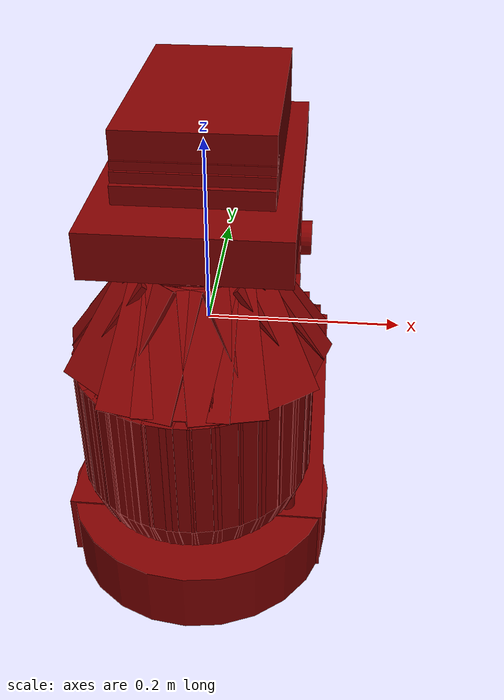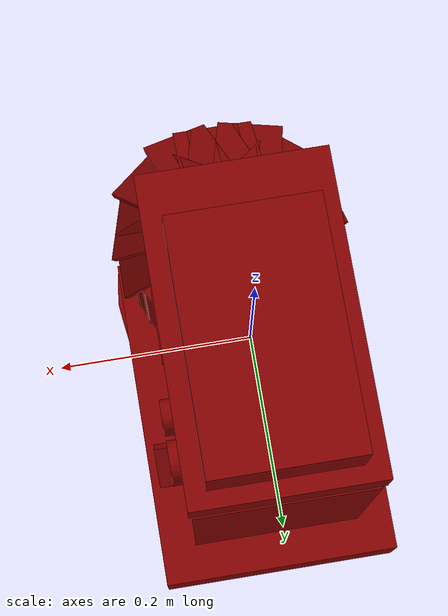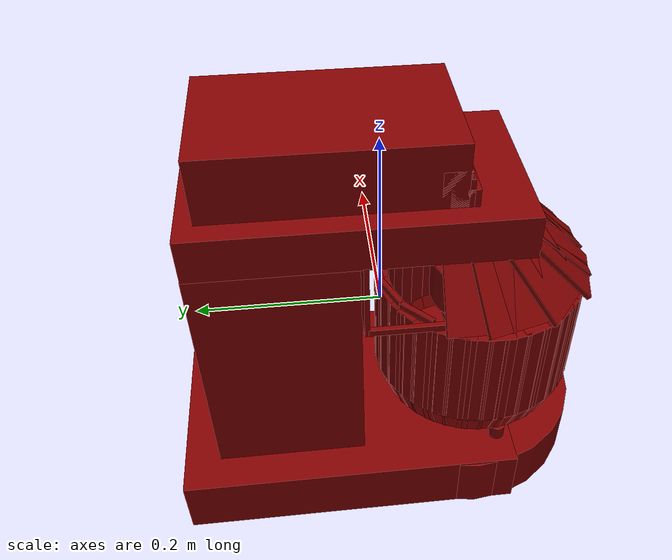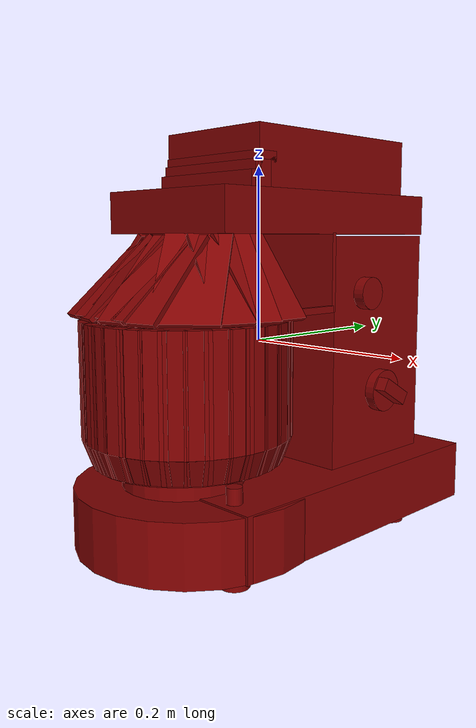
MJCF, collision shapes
<?xml version='1.0' encoding='UTF-8'?>
<mujoco model="model">
  <compiler angle="radian"/>
  <asset>
    <mesh file="visuals/Blender001.obj" name="Blender001_vis"/>
    <mesh file="visuals/Body001.obj" name="Body001_vis"/>
    <mesh file="visuals/Button001.obj" name="Button001_vis"/>
    <mesh file="visuals/Container001.obj" name="Container001_vis"/>
    <mesh file="visuals/Knob001.obj" name="Knob001_vis"/>
    <mesh file="visuals/Lid001.obj" name="Lid001_vis"/>
    <texture file="visuals/T_BC001.png" name="Body001_material" type="2d"/>
    <material name="Body001_material" rgba="1 1 1 1.0" texture="Body001_material" shininess="0.4472135901451111" specular="0.7"/>
    <texture file="visuals/T_BC001.png" name="Button001_material" type="2d"/>
    <material name="Button001_material" rgba="1 1 1 1.0" texture="Button001_material" shininess="0.4472135901451111" specular="0.7"/>
    <texture file="visuals/T_BC001.png" name="Container001_material" type="2d"/>
    <material name="Container001_material" rgba="1 1 1 1.0" texture="Container001_material" shininess="0.4472135901451111" specular="0.7"/>
    <texture file="visuals/T_BC001.png" name="Knob001_material" type="2d"/>
    <material name="Knob001_material" rgba="1 1 1 1.0" texture="Knob001_material" shininess="0.4472135901451111" specular="0.7"/>
    <texture file="visuals/T_BC001.png" name="Lid001_material" type="2d"/>
    <material name="Lid001_material" rgba="1 1 1 1.0" texture="Lid001_material" shininess="0.4472135901451111" specular="0.7"/>
    <texture file="visuals/T_BC001.png" name="Blender001_material" type="2d"/>
    <material name="Blender001_material" rgba="1 1 1 1.0" texture="Blender001_material" shininess="0.4472135901451111" specular="0.7"/>
  </asset>
  <default>
    <default class="visual">
      <geom conaffinity="0" contype="0" group="1" type="mesh"/>
    </default>
    <default class="collision">
      <geom group="0" rgba="0.5 0 0 0.5"/>
    </default>
    <default class="spawn">
      <geom group="0" rgba="1 1 1 0.5" contype="0" conaffinity="0"/>
      <site group="0" rgba="1 1 1 0.5"/>
    </default>
    <default class="region">
      <geom group="1" conaffinity="0" contype="0" rgba="0 1 0 0"/>
    </default>
  </default>
  <worldbody>
    <body>
      <body name="object">
        <geom mesh="Body001_vis" type="mesh" solimp="0.998 0.998 0.001" solref="0.001 1" density="100" friction="0.95 0.3 0.1" class="visual" material="Body001_material"/>
        <geom class="collision" type="box" pos="-0.0007884482038207352 0.10966469347476959 -0.011680183932185173" size="0.09152669459581375 0.0818587988615036 0.13259609043598175" quat="1.0 0.0 0.0 0.0"/>
        <geom class="collision" type="cylinder" pos="-0.09157982468605042 -0.12557129561901093 -0.21869555115699768" size="0.01601528935134411 0.011921694502234459" quat="1.0 0.0 0.0 0.0"/>
        <geom class="collision" type="cylinder" pos="-0.09157982468605042 0.13837343454360962 -0.21869555115699768" size="0.01601528935134411 0.011921694502234459" quat="1.0 0.0 0.0 0.0"/>
        <geom class="collision" type="cylinder" pos="0.0929291695356369 0.13837343454360962 -0.21869555115699768" size="0.01601528935134411 0.011921694502234459" quat="1.0 0.0 0.0 0.0"/>
        <geom class="collision" type="cylinder" pos="0.0929291695356369 -0.12557129561901093 -0.21869555115699768" size="0.01601528935134411 0.011921694502234459" quat="1.0 0.0 0.0 0.0"/>
        <geom class="collision" type="cylinder" pos="-0.09143412858247757 -0.12539009749889374 -0.1359458714723587" size="0.008488369174301624 0.009389183484017849" quat="1.0 0.0 0.0 0.0"/>
        <geom class="collision" type="cylinder" pos="0.09264079481363297 -0.12539009749889374 -0.1359458714723587" size="0.008488369174301624 0.009389183484017849" quat="1.0 0.0 0.0 0.0"/>
        <geom class="collision" type="cylinder" pos="-0.00843361858278513 -0.12539009749889374 -0.1359458714723587" size="0.008488369174301624 0.009389183484017849" quat="1.0 0.0 0.0 0.0"/>
        <geom class="collision" type="cylinder" pos="-0.001985041191801429 -0.11356186866760254 -0.14867164194583893" size="0.06737740337848663 0.02544773928821087" quat="1.0 0.0 0.0 0.0"/>
        <geom class="collision" type="box" pos="-0.0006400577840395272 0.04438207298517227 -0.178863063454628" size="0.1297663003206253 0.18647688627243042 0.03476670756936073" quat="1.0 0.0 0.0 0.0"/>
        <geom class="collision" type="cylinder" pos="0.0007358510629273951 -0.09750024229288101 -0.17969581484794617" size="0.13394969701766968 0.033853307366371155" quat="1.0 0.0 0.0 0.0"/>
        <body name="Button001">
          <joint axis="-1.0 0.0 0.0" pos="0.09236656129360199 0.07978411018848419 0.05673877149820328" limited="true" name="Button001_joint" range="0.0 0.002" type="slide" damping="1" frictionloss="1" armature=".01" stiffness="0.05"/>
          <geom mesh="Button001_vis" type="mesh" solimp="0.998 0.998 0.001" solref="0.001 1" density="100" friction="0.95 0.3 0.1" class="visual" material="Button001_material"/>
          <geom class="collision" type="cylinder" pos="0.09791237115859985 0.07948864251375198 0.05587083473801613" size="0.018539974465966225 0.006515131331980228" quat="0.7071068286895752 -0.0 0.7071067690849304 0.0"/>
        </body>
        <body name="Container001">
          <joint axis="0.0 0.0 1.0" pos="0.0 -0.10831348598003387 -0.04335395246744156" limited="true" name="Container001_joint" range="0.0 0.08" type="slide" damping="1" frictionloss="1" armature=".01" stiffness="0.05"/>
          <geom mesh="Container001_vis" type="mesh" solimp="0.998 0.998 0.001" solref="0.001 1" density="100" friction="0.95 0.3 0.1" class="visual" material="Container001_material"/>
          <geom class="collision" type="box" pos="0.10189328342676163 -0.11322380602359772 -0.10233451426029205" size="0.013965840451419353 0.0066327000968158245 0.015045318752527237" quat="0.7120574712753296 0.12730690836906433 0.12152275443077087 0.6797053217887878"/>
          <geom class="collision" type="box" pos="0.09313759207725525 -0.1500387042760849 -0.10233451426029205" size="0.013965838588774204 0.00663269916549325 0.015045315958559513" quat="0.8260143995285034 0.14768095314502716 0.09573482722043991 0.5354674458503723"/>
          <geom class="collision" type="box" pos="0.09738185256719589 -0.1519366353750229 -0.028676670044660568" size="0.01396583765745163 0.006632702890783548 0.06229601800441742" quat="0.8391123414039612 0.0 0.0 0.5439581871032715"/>
          <geom class="collision" type="cylinder" pos="0.00023518240777775645 -0.11029031872749329 -0.11285266280174255" size="0.09875737875699997 0.00806751474738121" quat="1.0 0.0 0.0 0.0"/>
          <geom class="collision" type="box" pos="0.021402928978204727 -0.20803727209568024 -0.10233448445796967" size="0.013965836726129055 0.00663269916549325 0.015045316889882088" quat="0.9789935350418091 0.1750316321849823 0.018404554575681686 0.10294099152088165"/>
          <geom class="collision" type="box" pos="0.06026076897978783 -0.1963675171136856 -0.028676670044660568" size="0.01396583765745163 0.006632702890783548 0.06229601800441742" quat="0.9554409384727478 0.0 0.0 0.29518234729766846"/>
          <geom class="collision" type="box" pos="0.05763828754425049 -0.19252844154834747 -0.10233451426029205" size="0.013965838588774204 0.006632699631154537 0.015045318752527237" quat="0.9405272603034973 0.16815443336963654 0.05195111781358719 0.2905747592449188"/>
          <geom class="collision" type="box" pos="0.08464417606592178 -0.1653444468975067 -0.10233451426029205" size="0.013965838588774204 0.0066327000968158245 0.015045316889882088" quat="0.8690050840377808 0.15536712110042572 0.08267930895090103 0.4624449908733368"/>
          <geom class="collision" type="box" pos="0.08850041776895523 -0.1679416447877884 -0.028676670044660568" size="0.01396583765745163 0.006632702890783548 0.06229601800441742" quat="0.8827846646308899 0.0 0.0 0.469777911901474"/>
          <geom class="collision" type="box" pos="0.10429301112890244 -0.13077999651432037 -0.028676677495241165" size="0.013965839520096779 0.006632703822106123 0.06229601800441742" quat="0.7776281237602234 0.0 0.0 0.6287245154380798"/>
          <geom class="collision" type="box" pos="0.09974677860736847 -0.12980639934539795 -0.10233451426029205" size="0.01396583765745163 0.006632699631154537 0.015045315958559513" quat="0.765489935874939 0.1368599534034729 0.11065340042114258 0.6189106106758118"/>
          <geom class="collision" type="box" pos="0.10065349191427231 -0.09197548031806946 -0.10233451426029205" size="0.013965839520096779 0.006632699631154537 0.015045316889882088" quat="0.6370744109153748 0.11390084028244019 0.1341693252325058 0.750440776348114"/>
          <geom class="collision" type="box" pos="0.10524114221334457 -0.09122078120708466 -0.028676670044660568" size="0.013965841382741928 0.00663270428776741 0.06229601800441742" quat="0.6471763253211975 0.0 0.0 0.7623403668403625"/>
          <geom class="collision" type="box" pos="0.07420507073402405 -0.18500061333179474 -0.028676670044660568" size="0.013965839520096779 0.006632703822106123 0.06229601800441742" quat="0.9270707368850708 0.0 0.0 0.3748863935470581"/>
          <geom class="collision" type="box" pos="0.0904875099658966 -0.0521109402179718 -0.028676670044660568" size="0.013965836726129055 0.006632702425122261 0.06229601800441742" quat="0.4848506450653076 0.0 0.0 0.8745969533920288"/>
          <geom class="collision" type="box" pos="0.08654442429542542 -0.05457431823015213 -0.10233451426029205" size="0.01396583765745163 0.006632699631154537 0.015045316889882088" quat="0.4772825241088867 0.08533207327127457 0.15392613410949707 0.8609451651573181"/>
          <geom class="collision" type="box" pos="0.022369982674717903 -0.21258492767810822 -0.028676670044660568" size="0.013965839520096779 0.006632703822106123 0.06229601800441742" quat="0.9945171475410461 0.0 0.0 0.10457359999418259"/>
          <geom class="collision" type="box" pos="0.061737511307001114 -0.02741362899541855 -0.10233451426029205" size="0.013965836726129055 0.0066327000968158245 0.015045316889882088" quat="0.3138279318809509 0.056108467280864716 0.1668132245540619 0.9330258369445801"/>
          <geom class="collision" type="box" pos="0.06454727053642273 -0.023709386587142944 -0.028676677495241165" size="0.013965836726129055 0.006632702425122261 0.06229601800441742" quat="0.31880423426628113 0.0 0.0 0.9478206038475037"/>
          <geom class="collision" type="box" pos="0.026318933814764023 -0.005323871970176697 -0.028676670044660568" size="0.01396583765745163 0.006632702890783548 0.06229601800441742" quat="0.12349949777126312 0.0 0.0 0.9923446178436279"/>
          <geom class="collision" type="box" pos="0.025179345160722733 -0.009831339120864868 -0.10233451426029205" size="0.01396583765745163 0.006632698699831963 0.015045315958559513" quat="0.12157176434993744 0.02173551917076111 0.17464932799339294 0.9768549203872681"/>
          <geom class="collision" type="box" pos="-0.012225277721881866 -0.007492713630199432 -0.10233451426029205" size="0.013965840451419353 0.006632700562477112 0.015045315958559513" quat="0.06037798523902893 0.010794822126626968 -0.17566528916358948 -0.9825373888015747"/>
          <geom class="collision" type="box" pos="-0.012794534675776958 -0.0028783977031707764 -0.028676670044660568" size="0.013965840451419353 0.006632703822106123 0.06229601800441742" quat="0.061335381120443344 0.0 0.0 -0.998117208480835"/>
          <geom class="collision" type="box" pos="-0.05263176187872887 -0.0161384716629982 -0.028676677495241165" size="0.013965838588774204 0.006632703356444836 0.06229601800441742" quat="0.25702959299087524 0.0 0.0 -0.9664035439491272"/>
          <geom class="collision" type="box" pos="0.07097336649894714 -0.18165814876556396 -0.10233451426029205" size="0.013965836726129055 0.0066327000968158245 0.015045316889882088" quat="0.9125999212265015 0.16316133737564087 0.0659787505865097 0.36903467774391174"/>
          <geom class="collision" type="box" pos="-0.0503220334649086 -0.020173467695713043 -0.10233451426029205" size="0.013965840451419353 0.0066327000968158245 0.015045316889882088" quat="0.2530176639556885 0.04523634538054466 -0.17008377611637115 -0.9513186812400818"/>
          <geom class="collision" type="box" pos="-0.07794873416423798 -0.04334898293018341 -0.10233451426029205" size="0.013965839520096779 0.0066327000968158245 0.015045316889882088" quat="0.417558878660202 0.07465425878763199 -0.15937866270542145 -0.8914425373077393"/>
          <geom class="collision" type="box" pos="-0.08152057975530624 -0.04037274420261383 -0.028676670044660568" size="0.013965839520096779 0.006632703822106123 0.06229601800441742" quat="0.4241800010204315 0.0 0.0 -0.9055778980255127"/>
          <geom class="collision" type="box" pos="-0.10010028630495071 -0.07303456962108612 -0.028676670044660568" size="0.013965836726129055 0.006632702425122261 0.06229601800441742" quat="0.5773990154266357 0.0 0.0 -0.8164620995521545"/>
          <geom class="collision" type="box" pos="-0.095716692507267 -0.07458384335041046 -0.10233451426029205" size="0.013965836726129055 0.0066327000968158245 0.015045316889882088" quat="0.5683863162994385 0.10162027180194855 -0.14369459450244904 -0.8037177324295044"/>
          <geom class="collision" type="box" pos="-0.10152013599872589 -0.11010442674160004 -0.10233451426029205" size="0.013965838588774204 0.006632700562477112 0.015045316889882088" quat="0.7015516757965088 0.12542855739593506 -0.12346050143241882 -0.6905435919761658"/>
          <geom class="collision" type="box" pos="-0.10616885870695114 -0.11017793416976929 -0.028676670044660568" size="0.00685272878035903 0.014068981632590294 0.06229601800441742" quat="1.0 0.0 0.0 0.0"/>
          <geom class="collision" type="box" pos="-0.09911313652992249 -0.1466338187456131 -0.028676670044660568" size="0.013965839520096779 0.006632703822106123 0.06229601800441742" quat="0.82413250207901 0.0 0.0 -0.5663970112800598"/>
          <geom class="collision" type="box" pos="-0.09477266669273376 -0.14496755599975586 -0.10233451426029205" size="0.013965836726129055 0.006632699631154537 0.015045318752527237" quat="0.8112683892250061 0.14504455029964447 -0.09968403726816177 -0.5575560927391052"/>
          <geom class="collision" type="box" pos="-0.074417345225811 -0.17765958607196808 -0.10233451426029205" size="0.013965839520096779 0.0066327000968158245 0.015045316889882088" quat="0.9021095633506775 0.16128577291965485 -0.0704394057393074 -0.39398422837257385"/>
          <geom class="collision" type="box" pos="0.03890387341380119 -0.202630415558815 -0.10233448445796967" size="0.013965840451419353 0.006632699631154537 0.015045318752527237" quat="0.965756893157959 0.17266513407230377 0.03408178314566612 0.19062745571136475"/>
          <geom class="collision" type="box" pos="-0.07782787829637527 -0.18081939220428467 -0.028676677495241165" size="0.013965838588774204 0.006632703356444836 0.06229601800441742" quat="0.9164140224456787 0.0 0.0 -0.40023157000541687"/>
          <geom class="collision" type="box" pos="-0.048105597496032715 -0.2032991498708725 -0.028676670044660568" size="0.01396583765745163 0.006632702890783548 0.06229601800441742" quat="0.9723350405693054 0.0 0.0 -0.23359063267707825"/>
          <geom class="collision" type="box" pos="-0.045993611216545105 -0.19915719330310822 -0.10233451426029205" size="0.013965839520096779 0.006632700562477112 0.015045318752527237" quat="0.9571576714515686 0.17112773656845093 -0.04111115261912346 -0.2299443483352661"/>
          <geom class="collision" type="box" pos="-0.014120768755674362 -0.20924539864063263 -0.10233451426029205" size="0.013965841382741928 0.006632700562477112 0.015045318752527237" quat="0.9819267988204956 0.17555609345436096 -0.012444666586816311 -0.06960588693618774"/>
          <geom class="collision" type="box" pos="-0.014776633121073246 -0.21384824812412262 -0.028676670044660568" size="0.01396583765745163 0.006632702890783548 0.06229601800441742" quat="0.9974969625473022 0.0 0.0 -0.07070967555046082"/>
          <geom class="collision" type="box" pos="-0.036361776292324066 -0.20842157304286957 -0.028676677495241165" size="0.013965838588774204 0.006632703356444836 0.06229601800441742" quat="0.9846334457397461 0.0 0.0 -0.1746336966753006"/>
          <geom class="collision" type="box" pos="-0.03476287052035332 -0.20405586063861847 -0.10233451426029205" size="0.013965836726129055 0.00663269916549325 0.015045317821204662" quat="0.9692639708518982 0.17329254746437073 -0.030735071748495102 -0.17190803587436676"/>
          <geom class="collision" type="box" pos="-0.06384027004241943 -0.18755872547626495 -0.10233451426029205" size="0.013965839520096779 0.0066327000968158245 0.015045320615172386" quat="0.927863597869873 0.16589036583900452 -0.05878116562962532 -0.3287770748138428"/>
          <geom class="collision" type="box" pos="-0.06676758825778961 -0.1911708265542984 -0.028676677495241165" size="0.01396583765745163 0.006632702890783548 0.06229601800441742" quat="0.9425765872001648 0.0 0.0 -0.3339901566505432"/>
          <geom class="collision" type="box" pos="-0.0911640077829361 -0.1630004495382309 -0.028676670044660568" size="0.013965839520096779 0.006632703822106123 0.06229601800441742" quat="0.8695359230041504 0.0 0.0 -0.49386975169181824"/>
          <geom class="collision" type="box" pos="0.04067046567797661 -0.206931009888649 -0.028676677495241165" size="0.013965839520096779 0.006632703822106123 0.06229601800441742" quat="0.9810706377029419 0.0 0.0 0.19365014135837555"/>
          <geom class="collision" type="box" pos="-0.08717083185911179 -0.16061915457248688 -0.10233451426029205" size="0.013965839520096779 0.006632699631154537 0.015045316889882088" quat="0.8559631109237671 0.15303540229797363 -0.08691941201686859 -0.4861608147621155"/>
          <geom class="collision" type="box" pos="-0.1002810150384903 -0.12440823018550873 -0.10233451426029205" size="0.013965836726129055 0.006632701028138399 0.015045316889882088" quat="0.7485148310661316 0.13382500410079956 -0.11430522799491882 -0.6393361687660217"/>
          <geom class="collision" type="box" pos="-0.10487311333417892 -0.12513522803783417 -0.028676670044660568" size="0.013965836726129055 0.006632702425122261 0.06229601800441742" quat="0.7603838443756104 0.0 0.0 -0.6494739651679993"/>
          <geom class="collision" type="box" pos="-0.10419172793626785 -0.08800908923149109 -0.028676670044660568" size="0.013965836726129055 0.006632702425122261 0.06229601800441742" quat="0.6354108452796936 0.0 0.0 -0.7721742391586304"/>
          <geom class="collision" type="box" pos="-0.09962937980890274 -0.08890409767627716 -0.10233451426029205" size="0.013965840451419353 0.006632699631154537 0.015045315958559513" quat="0.6254926919937134 0.11183018237352371 -0.13590008020401 -0.7601211071014404"/>
          <geom class="collision" type="box" pos="-0.08656459301710129 -0.05536751449108124 -0.10233451426029205" size="0.013965838588774204 0.0066327000968158245 0.015045316889882088" quat="0.4812224805355072 0.08603650331497192 -0.15353348851203918 -0.8587491512298584"/>
          <geom class="collision" type="box" pos="-0.09053006768226624 -0.05294034630060196 -0.028676670044660568" size="0.013965838588774204 0.006632703356444836 0.06229601800441742" quat="0.4888530969619751 0.0 0.0 -0.8723661303520203"/>
          <geom class="collision" type="box" pos="-0.06556304544210434 -0.02485746145248413 -0.028676670044660568" size="0.013965838588774204 0.006632703356444836 0.06229601800441742" quat="0.3271549344062805 0.0 0.0 -0.9449707269668579"/>
          <geom class="collision" type="box" pos="-0.06268836557865143 -0.028511539101600647 -0.10233451426029205" size="0.013965839520096779 0.006632700562477112 0.015045315958559513" quat="0.3220481872558594 0.05757814273238182 -0.16631169617176056 -0.9302204847335815"/>
          <geom class="collision" type="box" pos="-0.03084539622068405 -0.011589251458644867 -0.10233451426029205" size="0.013965841382741928 0.006632699631154537 0.015045318752527237" quat="0.15214776992797852 0.027202147990465164 -0.1738818734884262 -0.9725616574287415"/>
          <geom class="collision" type="box" pos="0.00023517990484833717 -0.21026302874088287 -0.10233448445796967" size="0.013965838588774204 0.006632700562477112 0.015045320615172386" quat="0.9843907356262207 0.17599667608737946 -3.9079274537340937e-17 1.1651339097177741e-23"/>
          <geom class="collision" type="box" pos="-0.0322653166949749 -0.007162079215049744 -0.028676670044660568" size="0.013965841382741928 0.00663270428776741 0.06229601800441742" quat="0.15456034243106842 0.0 0.0 -0.9879833459854126"/>
          <geom class="collision" type="box" pos="0.00945871789008379 -0.002478167414665222 -0.028676670044660568" size="0.013965838588774204 0.006632703356444836 0.06229601800441742" quat="0.04337745159864426 0.0 0.0 0.9990587830543518"/>
          <geom class="collision" type="box" pos="0.009055743925273418 -0.007109969854354858 -0.10233451426029205" size="0.013965838588774204 0.00663269916549325 0.015045317821204662" quat="0.04270035773515701 0.00763430492952466 0.17583119869232178 0.9834641814231873"/>
          <geom class="collision" type="box" pos="0.0451558418571949 -0.01717764139175415 -0.10233451426029205" size="0.013965839520096779 0.00663269916549325 0.015045320615172386" quat="0.22305823862552643 0.03988001123070717 0.17141881585121155 0.9587857723236084"/>
          <geom class="collision" type="box" pos="0.047208067029714584 -0.013005778193473816 -0.028676670044660568" size="0.013965839520096779 0.006632703822106123 0.06229601800441742" quat="0.2265952229499817 0.0 0.0 0.9739890098571777"/>
          <geom class="collision" type="box" pos="0.08077610284090042 -0.0389406681060791 -0.028676670044660568" size="0.013965839520096779 0.006632703822106123 0.06229601800441742" quat="0.4161731004714966 0.0 0.0 0.9092854261398315"/>
          <geom class="collision" type="box" pos="0.07725732028484344 -0.041979461908340454 -0.10233451426029205" size="0.013965839520096779 0.0066327000968158245 0.015045316889882088" quat="0.40967684984207153 0.07324506342411041 0.16003122925758362 0.8950921893119812"/>
          <geom class="collision" type="box" pos="0.09587226063013077 -0.07370595633983612 -0.10233451426029205" size="0.013965836726129055 0.006632699631154537 0.015045318752527237" quat="0.5646975040435791 0.10096082091331482 0.144158735871315 0.8063137531280518"/>
          <geom class="collision" type="box" pos="0.10024146735668182 -0.07211661338806152 -0.028676670044660568" size="0.013965836726129055 0.006632702425122261 0.06229601800441742" quat="0.5736517310142517 0.0 0.0 0.8190993070602417"/>
          <geom class="collision" type="box" pos="0.10653755813837051 -0.11343982815742493 -0.028676670044660568" size="0.01396583765745163 0.006632702890783548 0.06229601800441742" quat="0.7233484387397766 0.0 0.0 0.6904832124710083"/>
          <geom class="collision" type="box" pos="0.00023517990484833717 -0.21491236984729767 -0.028676670044660568" size="0.013965838588774204 0.006632703356444836 0.06229601800441742" quat="1.0 0.0 0.0 0.0"/>
        </body>
        <body name="Knob001">
          <joint axis="-1.0 0.0 0.0" pos="0.10591834783554077 0.10892479121685028 -0.060967087745666504" limited="true" name="Knob001_joint" range="0.0 4.886921905584122" type="hinge" damping="0.05" armature="0.001"/>
          <geom mesh="Knob001_vis" type="mesh" solimp="0.998 0.998 0.001" solref="0.001 1" density="100" friction="0.95 0.3 0.1" class="visual" material="Knob001_material"/>
          <geom class="collision" type="cylinder" pos="0.09889586269855499 0.1084667518734932 -0.06107860431075096" size="0.024719323962926865 0.005838913843035698" quat="0.7071068286895752 -0.0 0.7071067690849304 0.0"/>
          <geom class="collision" type="box" pos="0.11128564924001694 0.10930505394935608 -0.0606585294008255" size="0.007459341082721949 0.007930416613817215 0.022051239386200905" quat="0.8656713962554932 0.5006126761436462 1.1115833065988877e-16 6.5158573652021226e-24"/>
        </body>
        <body name="Lid001">
          <joint axis="-1.0 0.0 0.0" pos="0.003621272509917617 0.18859846889972687 0.12621155381202698" limited="true" name="Lid001_joint" range="0.0 1.5707963267948966" type="hinge" damping="1" frictionloss="1" armature=".01" stiffness="0.05"/>
          <geom mesh="Lid001_vis" type="mesh" solimp="0.998 0.998 0.001" solref="0.001 1" density="100" friction="0.95 0.3 0.1" class="visual" material="Lid001_material"/>
          <geom class="collision" type="box" pos="-0.001328813610598445 0.026462554931640625 0.14599385857582092" size="0.0951722115278244 0.16363123059272766 0.022937003523111343" quat="1.0 0.0 0.0 0.0"/>
          <geom class="collision" type="box" pos="4.78647998534143e-05 -0.06080763041973114 0.18801355361938477" size="0.07387411594390869 0.013172403909265995 0.019035575911402702" quat="1.0 0.0 0.0 0.0"/>
          <geom class="collision" type="box" pos="4.78647998534143e-05 0.050475552678108215 0.2016994208097458" size="0.07387412339448929 0.12249021232128143 0.03272141143679619" quat="1.0 0.0 0.0 0.0"/>
          <geom class="collision" type="box" pos="4.78647998534143e-05 -0.06735362112522125 0.18801355361938477" size="0.07387413084506989 0.006761385593563318 0.019035579636693" quat="1.0 0.0 0.0 0.0"/>
          <geom class="collision" type="box" pos="4.78647998534143e-05 -0.07674458622932434 0.17815126478672028" size="0.07387413829565048 0.00600218353793025 0.009173277765512466" quat="1.0 0.0 0.0 0.0"/>
          <geom class="collision" type="box" pos="4.78647998534143e-05 -0.066293865442276 0.18358752131462097" size="0.07387414574623108 0.010829196311533451 0.014609526842832565" quat="1.0 0.0 0.0 0.0"/>
          <geom class="collision" type="box" pos="0.09245838224887848 -0.01736270636320114 0.04113068804144859" size="0.0027169252280145884 0.03912000358104706 0.003724277950823307" quat="1.0 0.0 0.0 0.0"/>
          <geom class="collision" type="box" pos="-0.001328813610598445 0.023036610335111618 0.08092157542705536" size="0.09517226368188858 0.0026967546436935663 0.04342474415898323" quat="1.0 0.0 0.0 0.0"/>
          <geom class="collision" type="box" pos="-0.09378419071435928 -0.01736270636320114 0.04113068804144859" size="0.0027169256936758757 0.039120011031627655 0.0037242784164845943" quat="1.0 0.0 0.0 0.0"/>
          <geom class="collision" type="box" pos="-0.07319995760917664 -0.029625937342643738 0.04113068804144859" size="0.0027169263921678066 0.020795566961169243 0.0037242791149765253" quat="0.9227108955383301 0.0 0.0 -0.3854927122592926"/>
          <geom class="collision" type="box" pos="-0.04002855718135834 -0.007736615836620331 0.04113068804144859" size="0.002716926857829094 0.02079557068645954 0.0037242791149765253" quat="0.837822437286377 0.0 0.0 -0.5459427833557129"/>
          <geom class="collision" type="box" pos="-0.0006694255862385035 0.0018757320940494537 0.04113068804144859" size="0.002716926857829094 0.020795568823814392 0.0037242791149765253" quat="0.7352935671806335 0.0 0.0 -0.6777487397193909"/>
          <geom class="collision" type="box" pos="0.04049614444375038 -0.003307454288005829 0.04113068804144859" size="0.0027169263921678066 0.020795565098524094 0.0037242791149765253" quat="0.5781680941581726 0.0 0.0 -0.8159176707267761"/>
          <geom class="collision" type="box" pos="0.0754881277680397 -0.023771516978740692 0.04113068804144859" size="0.0027169263921678066 0.020795566961169243 0.0037242791149765253" quat="0.42034149169921875 0.0 0.0 -0.9073659777641296"/>
          <geom class="collision" type="box" pos="-0.002869380870833993 -0.17646372318267822 0.07941456139087677" size="0.03435741737484932 0.002696757670491934 0.05819800868630409" quat="0.9129106998443604 -0.40815937519073486 9.062957397578455e-17 9.815488587912014e-24"/>
          <geom class="collision" type="box" pos="-0.0573975145816803 -0.15529786050319672 0.08139331638813019" size="0.03435741737484932 0.0026967579033225775 0.054849106818437576" quat="0.8775176405906677 -0.345663458108902 0.12181935459375381 -0.3092564642429352"/>
          <geom class="collision" type="box" pos="-0.07870510220527649 -0.08780740201473236 0.08140534162521362" size="0.03435741737484932 0.002696757670491934 0.05192197486758232" quat="0.6705660820007324 -0.22436828911304474 0.22436831891536713 -0.6705660820007324"/>
          <geom class="collision" type="box" pos="-0.07558850944042206 -0.11878924071788788 0.08101095259189606" size="0.03435742110013962 0.002696758136153221 0.052268557250499725" quat="0.5672957897186279 0.2008899748325348 0.2665899991989136 0.752826988697052"/>
          <geom class="collision" type="box" pos="-0.02643406391143799 -0.17646372318267822 0.07941456139087677" size="0.034357424825429916 0.00269675743766129 0.05819801241159439" quat="0.9145876169204712 -0.3882196545600891 0.04423206299543381 -0.10420415550470352"/>
          <geom class="collision" type="box" pos="0.035575054585933685 -0.17646372318267822 0.07941456139087677" size="0.03435741737484932 0.00269675743766129 0.05819800868630409" quat="0.38821929693222046 0.9145877957344055 0.1042041927576065 0.04423203319311142"/>
          <geom class="collision" type="box" pos="0.085704505443573 -0.11906881630420685 0.07975839078426361" size="0.034357406198978424 0.002696758368983865 0.05388029292225838" quat="0.20089006423950195 -0.5672956705093384 0.752826988697052 -0.2665901482105255"/>
          <geom class="collision" type="box" pos="0.0885564312338829 -0.08780740201473236 0.08046267926692963" size="0.03435741737484932 0.0026967579033225775 0.05310233309864998" quat="0.22436833381652832 0.6705661416053772 0.6705660223960876 0.22436827421188354"/>
          <geom class="collision" type="box" pos="0.06728053838014603 -0.15621985495090485 0.0801241397857666" size="0.03435741737484932 0.002696757670491934 0.05658446252346039" quat="0.3456633985042572 0.8775177001953125 0.30925649404525757 0.12181936204433441"/>
          <geom class="collision" type="box" pos="0.01201037596911192 -0.17646372318267822 0.07941456139087677" size="0.03435741737484932 0.00269675743766129 0.058198004961013794" quat="0.40815937519073486 0.9129106998443604 -8.554915682639614e-24 9.062957397578455e-17"/>
          <body name="Blender001">
            <joint axis="0.0 0.0 1.0" pos="0.002795243402943015 -0.11111302673816681 0.034960873425006866" limited="false" name="Blender001_joint" range="0 360" type="hinge" damping="1" frictionloss="1" armature=".01" stiffness="0.05"/>
            <geom mesh="Blender001_vis" type="mesh" solimp="0.998 0.998 0.001" solref="0.001 1" density="100" friction="0.95 0.3 0.1" class="visual" material="Blender001_material"/>
            <geom class="collision" type="cylinder" pos="0.0027952438686043024 -0.11111300438642502 0.09231631457805634" size="0.005836151540279388 0.02934553287923336" quat="1.0 0.0 0.0 0.0"/>
            <geom class="collision" type="cylinder" pos="0.0027952438686043024 -0.11111301183700562 0.05263470858335495" size="0.04610991105437279 0.007561697158962488" quat="1.0 0.0 0.0 0.0"/>
            <geom class="collision" type="cylinder" pos="0.0027952438686043024 -0.11111301183700562 0.056176893413066864" size="0.013604322448372841 0.006940186023712158" quat="1.0 0.0 0.0 0.0"/>
            <geom class="collision" type="cylinder" pos="0.0027952438686043024 -0.11111301183700562 -0.008721573278307915" size="0.0449167937040329 0.009293390437960625" quat="1.0 0.0 0.0 0.0"/>
            <geom class="collision" type="cylinder" pos="0.0027952438686043024 -0.11111301183700562 0.022189287468791008" size="0.05491243302822113 0.02572678215801716" quat="1.0 0.0 0.0 0.0"/>
            <geom class="collision" type="cylinder" pos="0.0027952436357736588 -0.11111301183700562 -0.025776680558919907" size="0.04001713916659355 0.008279640227556229" quat="1.0 0.0 0.0 0.0"/>
            <geom class="collision" type="cylinder" pos="0.002795243402943015 -0.11111301183700562 -0.03797990083694458" size="0.02850527875125408 0.005897809285670519" quat="1.0 0.0 0.0 0.0"/>
            <geom class="collision" type="cylinder" pos="0.002795243402943015 -0.11111301183700562 -0.04878636822104454" size="0.01759735494852066 0.005184714682400227" quat="1.0 0.0 0.0 0.0"/>
          </body>
        </body>
        <geom class="region" name="reg_main" type="box" pos="2.806384902243053e-09 0.0 0.0" size="0.12900981307029724 0.23013272881507874 0.2302367091178894"/>
      </body>
    </body>
  </worldbody>
  <actuator>
    <motor name="Button001_joint_actuator" joint="Button001_joint" gear="0.5"/>
    <motor name="Container001_joint_actuator" joint="Container001_joint" gear="10"/>
    <motor name="Knob001_joint_actuator" joint="Knob001_joint" gear="10"/>
    <motor name="Lid001_joint_actuator" joint="Lid001_joint" gear="10"/>
    <motor name="Blender001_joint_actuator" joint="Blender001_joint" gear="10"/>
  </actuator>
</mujoco>
